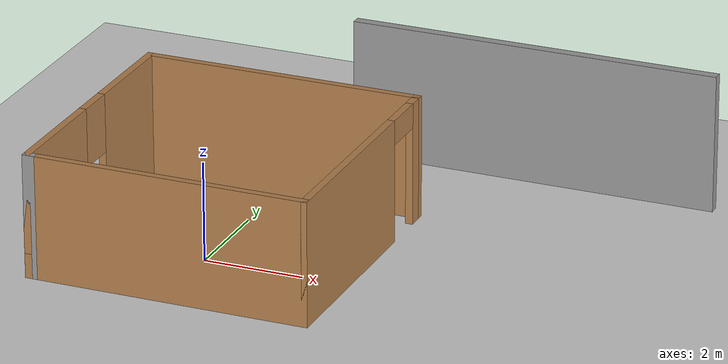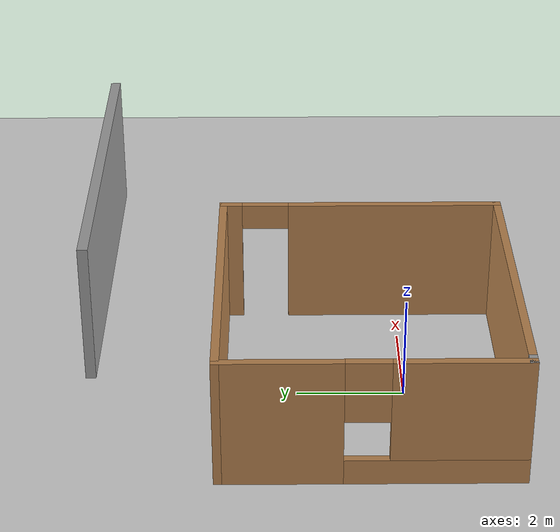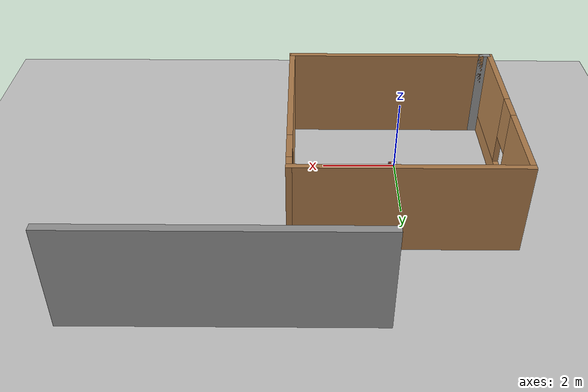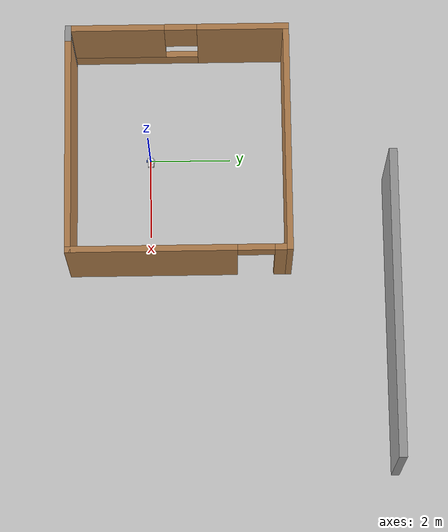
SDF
<sdf version="1.7">
 <world name="default">
  <light name="sun" type="directional">
   <pose>0 0 10 0 -0 0</pose>
   <diffuse>0.8 0.8 0.8 1</diffuse>
   <specular>0.2 0.2 0.2 1</specular>
   <attenuation>
    <range>1000</range>
    <constant>0.9</constant>
    <linear>0.01</linear>
    <quadratic>0.001</quadratic>
   </attenuation>
   <direction>-0.5 0.1 -0.9</direction>
   <spot><inner_angle>0</inner_angle><outer_angle>0</outer_angle><falloff>0</falloff></spot>
  </light>
  <model name="ground_plane">
   <static>1</static>
   <link name="link">
    <collision name="collision">
     <geometry><plane><normal>0 0 1</normal><size>100 100</size></plane></geometry>
     <surface>
      <contact><collide_bitmask>65535</collide_bitmask></contact>
      <friction><ode><mu>100</mu><mu2>50</mu2></ode></friction>
     </surface>
    </collision>
    <visual name="visual">
     <cast_shadows>0</cast_shadows>
     <geometry><plane><normal>0 0 1</normal><size>100 100</size></plane></geometry>
     <material>
      <script><uri>file://media/materials/scripts/gazebo.material</uri><name>Gazebo/Grey</name></script>
     </material>
    </visual>
   </link>
  </model>
  <gravity>0 0 -9.8</gravity>
  <magnetic_field>6e-06 2.3e-05 -4.2e-05</magnetic_field>
  <atmosphere type="adiabatic"/>
  <physics type="ode">
   <max_step_size>0.001</max_step_size>
   <real_time_factor>1</real_time_factor>
   <real_time_update_rate>1000</real_time_update_rate>
  </physics>
  <scene><ambient>0.4 0.4 0.4 1</ambient><background>0.7 0.7 0.7 1</background><shadows>1</shadows></scene>
  <audio><device>default</device></audio>
  <spherical_coordinates>
   <surface_model>EARTH_WGS84</surface_model>
   <latitude_deg>0</latitude_deg>
   <longitude_deg>0</longitude_deg>
   <elevation>0</elevation>
   <heading_deg>0</heading_deg>
  </spherical_coordinates>
  <model name="diff_bot">
   <link name="base_link">
    <inertial>
     <pose>0.07 0 0.038071 0 -0 0</pose>
     <mass>0.7</mass>
     <inertia>
      <ixx>0.00515635</ixx>
      <ixy>0</ixy>
      <ixz>-2e-05</ixz>
      <iyy>0.00585635</iyy>
      <iyz>0</iyz>
      <izz>0.00827305</izz>
     </inertia>
    </inertial>
    <collision name="base_link_fixed_joint_lump__chassis_collision">
     <pose>0.05 0 0.0375 0 -0 0</pose>
     <geometry><box><size>0.23 0.15 0.075</size></box></geometry>
    </collision>
    <collision name="base_link_fixed_joint_lump__caster_wheel_collision_1">
     <pose>0.12 0 -0.006 0 -0 0</pose>
     <geometry><sphere><radius>0.025</radius></sphere></geometry>
     <surface><friction><ode><mu>0.001</mu><mu2>0.001</mu2></ode></friction></surface>
    </collision>
    <collision name="base_link_fixed_joint_lump__laser_frame_collision_2">
     <pose>0.12 0 0.085 0 -0 0</pose>
     <geometry><cylinder><length>0.025</length><radius>0.031</radius></cylinder></geometry>
    </collision>
    <visual name="base_link_fixed_joint_lump__chassis_visual">
     <pose>0.05 0 0.0375 0 -0 0</pose>
     <geometry><box><size>0.23 0.15 0.075</size></box></geometry>
     <material>
      <script><name>Gazebo/White</name><uri>file://media/materials/scripts/gazebo.material</uri></script>
     </material>
    </visual>
    <visual name="base_link_fixed_joint_lump__camera_link_visual_1">
     <pose>0.162 0 0.055 0 -0 0</pose>
     <geometry><box><size>0.01 0.03 0.03</size></box></geometry>
     <material>
      <script><name>Gazebo/Red</name><uri>file://media/materials/scripts/gazebo.material</uri></script>
     </material>
    </visual>
    <visual name="base_link_fixed_joint_lump__caster_wheel_visual_2">
     <pose>0.12 0 -0.006 0 -0 0</pose>
     <geometry><sphere><radius>0.025</radius></sphere></geometry>
     <material>
      <script><name>Gazebo/White</name><uri>file://media/materials/scripts/gazebo.material</uri></script>
     </material>
    </visual>
    <visual name="base_link_fixed_joint_lump__laser_frame_visual_3">
     <pose>0.12 0 0.085 0 -0 0</pose>
     <geometry><cylinder><length>0.025</length><radius>0.031</radius></cylinder></geometry>
     <material>
      <script><name>Gazebo/Red</name><uri>file://media/materials/scripts/gazebo.material</uri></script>
     </material>
    </visual>
    <sensor name="laser" type="ray">
     <visualize>1</visualize>
     <update_rate>10</update_rate>
     <ray>
      <scan>
       <horizontal>
        <samples>360</samples>
        <min_angle>-3.14</min_angle>
        <max_angle>3.14</max_angle>
        <resolution>1</resolution>
       </horizontal>
       <vertical><samples>1</samples><min_angle>0</min_angle><max_angle>0</max_angle></vertical>
      </scan>
      <range><min>0.3</min><max>12</max></range>
     </ray>
     <plugin name="laser_controller" filename="libgazebo_ros_ray_sensor.so">
      <ros><argument>~/out:=scan</argument></ros>
      <output_type>sensor_msgs/LaserScan</output_type>
      <frame_name>laser_frame</frame_name>
     </plugin>
     <pose>0.12 0 0.085 0 -0 0</pose>
    </sensor>
   </link>
   <joint name="left_wheel_joint" type="revolute">
    <pose relative_to="base_link">0 0.1 0 -1.5708 0 0</pose>
    <parent>base_link</parent>
    <child>left_wheel</child>
    <axis>
     <xyz>0 0 1</xyz>
     <limit><lower>-1e+16</lower><upper>1e+16</upper></limit>
     <dynamics><spring_reference>0</spring_reference><spring_stiffness>0</spring_stiffness></dynamics>
    </axis>
   </joint>
   <link name="left_wheel">
    <pose relative_to="left_wheel_joint">0 0 0 0 -0 0</pose>
    <inertial>
     <mass>0.1</mass>
     <inertia>
      <ixx>2.92333e-05</ixx>
      <ixy>0</ixy>
      <ixz>0</ixz>
      <iyy>2.92333e-05</iyy>
      <iyz>0</iyz>
      <izz>4.805e-05</izz>
     </inertia>
    </inertial>
    <collision name="left_wheel_collision">
     <geometry><cylinder><length>0.025</length><radius>0.031</radius></cylinder></geometry>
    </collision>
    <visual name="left_wheel_visual">
     <geometry><cylinder><length>0.025</length><radius>0.031</radius></cylinder></geometry>
     <material>
      <script><name>Gazebo/Blue</name><uri>file://media/materials/scripts/gazebo.material</uri></script>
     </material>
    </visual>
   </link>
   <joint name="right_wheel_joint" type="revolute">
    <pose relative_to="base_link">0 -0.1 0 1.5708 -0 0</pose>
    <parent>base_link</parent>
    <child>right_wheel</child>
    <axis>
     <xyz>0 0 -1</xyz>
     <limit><lower>-1e+16</lower><upper>1e+16</upper></limit>
     <dynamics><spring_reference>0</spring_reference><spring_stiffness>0</spring_stiffness></dynamics>
    </axis>
   </joint>
   <link name="right_wheel">
    <pose relative_to="right_wheel_joint">0 0 0 0 -0 0</pose>
    <inertial>
     <mass>0.1</mass>
     <inertia>
      <ixx>2.92333e-05</ixx>
      <ixy>0</ixy>
      <ixz>0</ixz>
      <iyy>2.92333e-05</iyy>
      <iyz>0</iyz>
      <izz>4.805e-05</izz>
     </inertia>
    </inertial>
    <collision name="right_wheel_collision">
     <geometry><cylinder><length>0.025</length><radius>0.031</radius></cylinder></geometry>
    </collision>
    <visual name="right_wheel_visual">
     <geometry><cylinder><length>0.025</length><radius>0.031</radius></cylinder></geometry>
     <material>
      <script><name>Gazebo/Blue</name><uri>file://media/materials/scripts/gazebo.material</uri></script>
     </material>
    </visual>
   </link>
   <static>0</static>
   <plugin name="diff_drive" filename="libgazebo_ros_diff_drive.so">
    <left_joint>left_wheel_joint</left_joint>
    <right_joint>right_wheel_joint</right_joint>
    <wheel_separation>0.2</wheel_separation>
    <wheel_diameter>0.06</wheel_diameter>
    <max_wheel_torque>200</max_wheel_torque>
    <max_wheel_acceleration>10.0</max_wheel_acceleration>
    <odometry_frame>odom</odometry_frame>
    <robot_base_frame>base_link</robot_base_frame>
    <publish_odom>1</publish_odom>
    <publish_odom_tf>1</publish_odom_tf>
    <publish_wheel_tf>1</publish_wheel_tf>
   </plugin>
   <pose>0.000432 0 0.031 0 4e-06 0.005308</pose>
  </model>
  <model name="myroom">
   <pose>0.102946 0.737717 0 0 -0 0</pose>
   <link name="Wall_0">
    <collision name="Wall_0_Collision">
     <geometry><box><size>5.5 0.15 2.5</size></box></geometry>
     <pose>0 0 1.25 0 -0 0</pose>
    </collision>
    <visual name="Wall_0_Visual">
     <pose>0 0 1.25 0 -0 0</pose>
     <geometry><box><size>5.5 0.15 2.5</size></box></geometry>
     <material>
      <script><uri>file://media/materials/scripts/gazebo.material</uri><name>Gazebo/Wood</name></script>
      <ambient>1 1 1 1</ambient>
     </material>
     <meta><layer>0</layer></meta>
    </visual>
    <pose>0.125 -2.675 0 0 -0 0</pose>
   </link>
   <link name="Wall_1">
    <pose>2.8 0 0 0 -0 1.5708</pose>
    <visual name="Wall_1_Visual_0">
     <pose>-0.669806 0 1.25 0 -0 0</pose>
     <geometry><box><size>4.16039 0.15 2.5</size></box></geometry>
     <material>
      <script><uri>file://media/materials/scripts/gazebo.material</uri><name>Gazebo/Wood</name></script>
      <ambient>1 1 1 1</ambient>
     </material>
     <meta><layer>0</layer></meta>
    </visual>
    <collision name="Wall_1_Collision_0">
     <geometry><box><size>4.16039 0.15 2.5</size></box></geometry>
     <pose>-0.669806 0 1.25 0 -0 0</pose>
    </collision>
    <visual name="Wall_1_Visual_1">
     <pose>2.53019 0 1.25 0 -0 0</pose>
     <geometry><box><size>0.439611 0.15 2.5</size></box></geometry>
     <material>
      <script><uri>file://media/materials/scripts/gazebo.material</uri><name>Gazebo/Wood</name></script>
      <ambient>1 1 1 1</ambient>
     </material>
     <meta><layer>0</layer></meta>
    </visual>
    <collision name="Wall_1_Collision_1">
     <geometry><box><size>0.439611 0.15 2.5</size></box></geometry>
     <pose>2.53019 0 1.25 0 -0 0</pose>
    </collision>
    <visual name="Wall_1_Visual_2">
     <pose>1.86039 0 2.25 0 -0 0</pose>
     <geometry><box><size>0.9 0.15 0.5</size></box></geometry>
     <material>
      <script><uri>file://media/materials/scripts/gazebo.material</uri><name>Gazebo/Wood</name></script>
      <ambient>1 1 1 1</ambient>
     </material>
     <meta><layer>0</layer></meta>
    </visual>
    <collision name="Wall_1_Collision_2">
     <geometry><box><size>0.9 0.15 0.5</size></box></geometry>
     <pose>1.86039 0 2.25 0 -0 0</pose>
    </collision>
   </link>
   <link name="Wall_2">
    <collision name="Wall_2_Collision">
     <geometry><box><size>5.75 0.15 2.5</size></box></geometry>
     <pose>0 0 1.25 0 -0 0</pose>
    </collision>
    <visual name="Wall_2_Visual">
     <pose>0 0 1.25 0 -0 0</pose>
     <geometry><box><size>5.75 0.15 2.5</size></box></geometry>
     <material>
      <script><uri>file://media/materials/scripts/gazebo.material</uri><name>Gazebo/Wood</name></script>
      <ambient>1 1 1 1</ambient>
     </material>
     <meta><layer>0</layer></meta>
    </visual>
    <pose>-0 2.675 0 0 -0 3.14159</pose>
   </link>
   <link name="Wall_3">
    <pose>-2.8 0 0 0 -0 -1.5708</pose>
    <visual name="Wall_3_Visual_0">
     <pose>-1.6183 0 1.25 0 -0 0</pose>
     <geometry><box><size>2.26341 0.15 2.5</size></box></geometry>
     <material>
      <script><uri>file://media/materials/scripts/gazebo.material</uri><name>Gazebo/Wood</name></script>
      <ambient>1 1 1 1</ambient>
     </material>
     <meta><layer>0</layer></meta>
    </visual>
    <collision name="Wall_3_Collision_0">
     <geometry><box><size>2.26341 0.15 2.5</size></box></geometry>
     <pose>-1.6183 0 1.25 0 -0 0</pose>
    </collision>
    <visual name="Wall_3_Visual_1">
     <pose>1.1317 0 0.25 0 -0 0</pose>
     <geometry><box><size>3.23659 0.15 0.5</size></box></geometry>
     <material>
      <script><uri>file://media/materials/scripts/gazebo.material</uri><name>Gazebo/Wood</name></script>
      <ambient>1 1 1 1</ambient>
     </material>
     <meta><layer>0</layer></meta>
    </visual>
    <collision name="Wall_3_Collision_1">
     <geometry><box><size>3.23659 0.15 0.5</size></box></geometry>
     <pose>1.1317 0 0.25 0 -0 0</pose>
    </collision>
    <visual name="Wall_3_Visual_2">
     <pose>1.5317 0 1.5 0 -0 0</pose>
     <geometry><box><size>2.43659 0.15 2</size></box></geometry>
     <material>
      <script><uri>file://media/materials/scripts/gazebo.material</uri><name>Gazebo/Wood</name></script>
      <ambient>1 1 1 1</ambient>
     </material>
     <meta><layer>0</layer></meta>
    </visual>
    <collision name="Wall_3_Collision_2">
     <geometry><box><size>2.43659 0.15 2</size></box></geometry>
     <pose>1.5317 0 1.5 0 -0 0</pose>
    </collision>
    <visual name="Wall_3_Visual_3">
     <pose>-0.086591 0 1.9 0 -0 0</pose>
     <geometry><box><size>0.8 0.15 1.2</size></box></geometry>
     <material>
      <script><uri>file://media/materials/scripts/gazebo.material</uri><name>Gazebo/Wood</name></script>
      <ambient>1 1 1 1</ambient>
     </material>
     <meta><layer>0</layer></meta>
    </visual>
    <collision name="Wall_3_Collision_3">
     <geometry><box><size>0.8 0.15 1.2</size></box></geometry>
     <pose>-0.086591 0 1.9 0 -0 0</pose>
    </collision>
   </link>
   <link name="Wall_4">
    <collision name="Wall_4_Collision">
     <geometry><box><size>0.4 0.15 2.5</size></box></geometry>
     <pose>0 0 1.25 0 -0 0</pose>
    </collision>
    <visual name="Wall_4_Visual">
     <pose>0 0 1.25 0 -0 0</pose>
     <geometry><box><size>0.4 0.15 2.5</size></box></geometry>
     <material>
      <script><uri>file://media/materials/scripts/gazebo.material</uri><name>Gazebo/Grey</name></script>
      <ambient>1 1 1 1</ambient>
     </material>
     <meta><layer>0</layer></meta>
    </visual>
    <pose>-2.675 -2.675 0 0 -0 0</pose>
   </link>
   <static>1</static>
  </model>
  <model name="grey_wall">
   <static>1</static>
   <link name="link">
    <pose>0 0 1.4 0 -0 0</pose>
    <collision name="collision"><geometry><box><size>7.5 0.2 2.8</size></box></geometry></collision>
    <visual name="visual">
     <cast_shadows>0</cast_shadows>
     <geometry><box><size>7.5 0.2 2.8</size></box></geometry>
     <material>
      <script>
       <uri>model://grey_wall/materials/scripts</uri>
       <uri>model://grey_wall/materials/textures</uri>
       <name>vrc/grey_wall</name>
      </script>
     </material>
    </visual>
   </link>
   <pose>4.32914 5.92837 0 0 -0 0</pose>
  </model>
 </world>
</sdf>
